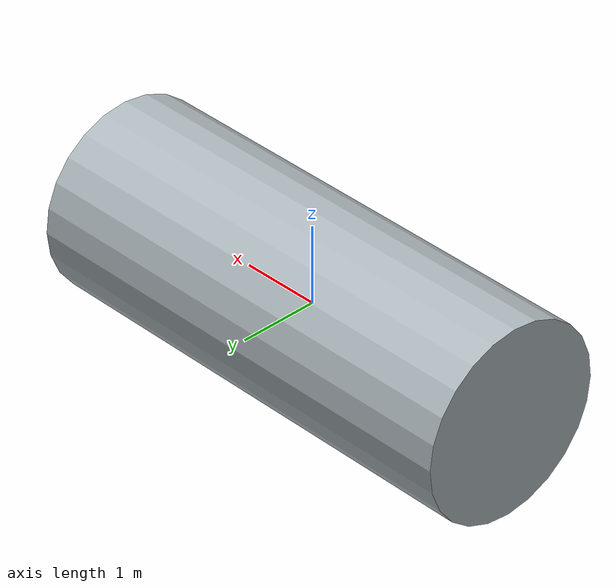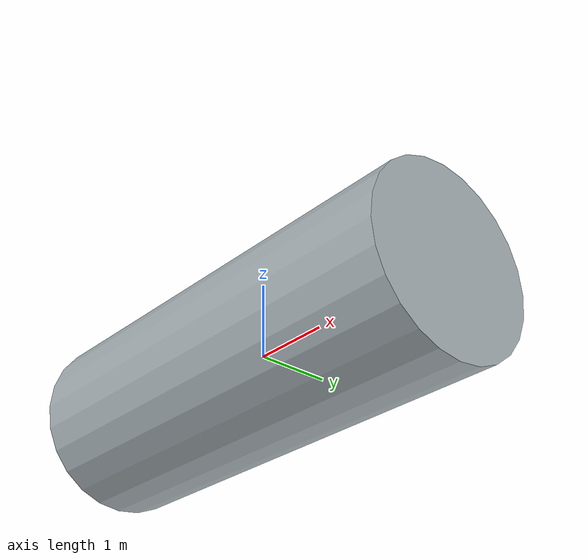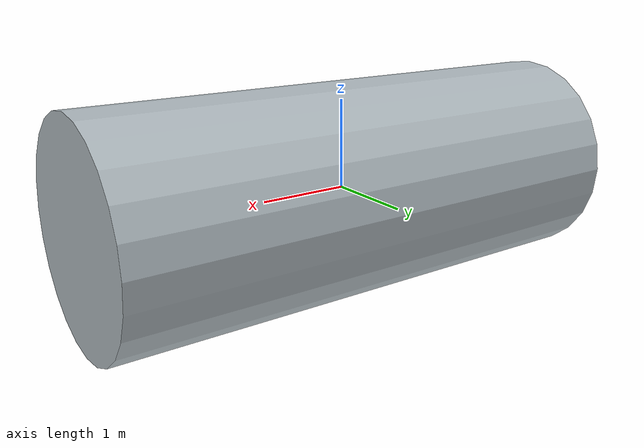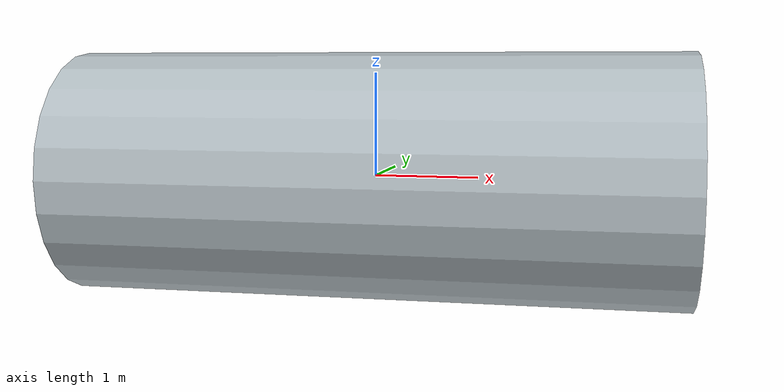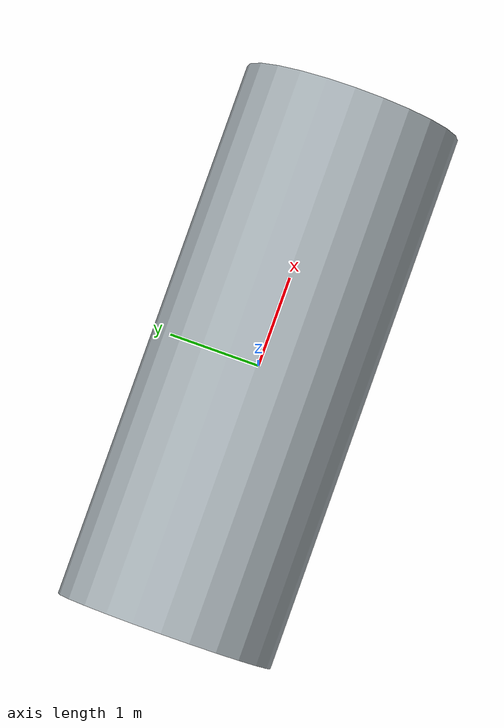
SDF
<?xml version="1.0"?>
<sdf version="1.8">
  <model name="horizontal_pipe">
    <static>true</static>

    <link name="pipe_link">
      <collision name="pipe_collision">
        <!-- Gazebo cylinders are Z-axis aligned by default. Rotating the link
             90 deg about Y makes this pipe run horizontally along world X. -->
        <pose>0 0 0 0 1.57079632679 0</pose>
        <geometry>
          <cylinder>
            <radius>1.20</radius>
            <length>6.00</length>
          </cylinder>
        </geometry>
        <surface>
          <friction>
            <ode>
              <mu>1.6</mu>
              <mu2>1.6</mu2>
            </ode>
          </friction>
          <contact>
            <ode>
              <kp>250000</kp>
              <kd>80</kd>
              <max_vel>0.20</max_vel>
              <min_depth>0.006</min_depth>
            </ode>
          </contact>
        </surface>
      </collision>

      <visual name="pipe_visual">
        <pose>0 0 0 0 1.57079632679 0</pose>
        <geometry>
          <cylinder>
            <radius>1.20</radius>
            <length>6.00</length>
          </cylinder>
        </geometry>
        <material>
          <ambient>0.55 0.58 0.60 1</ambient>
          <diffuse>0.68 0.72 0.74 1</diffuse>
          <specular>0.35 0.35 0.35 1</specular>
        </material>
      </visual>
    </link>
  </model>
</sdf>
